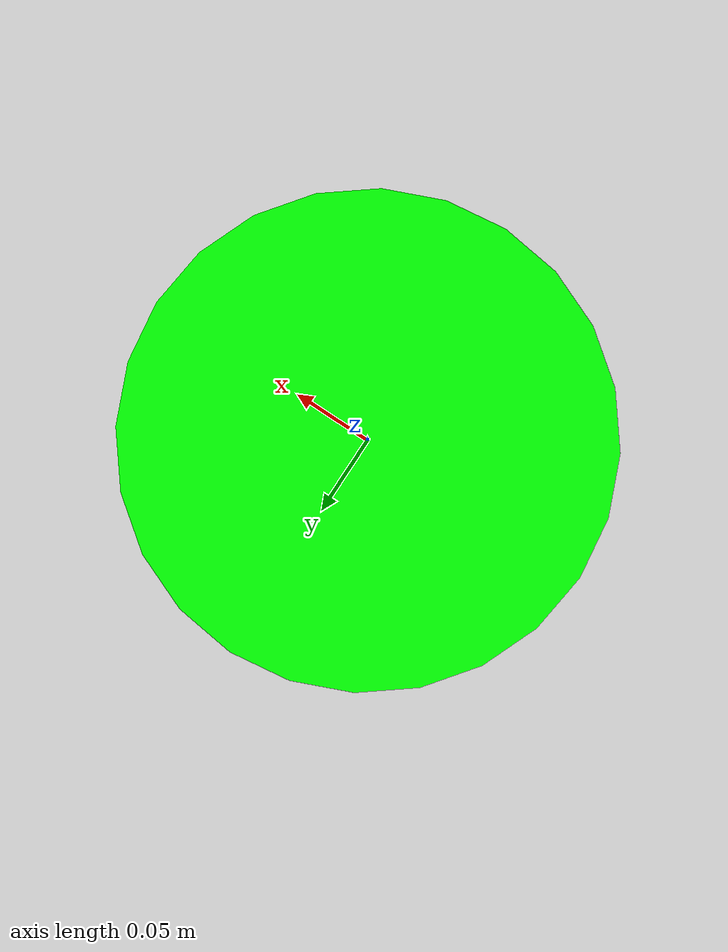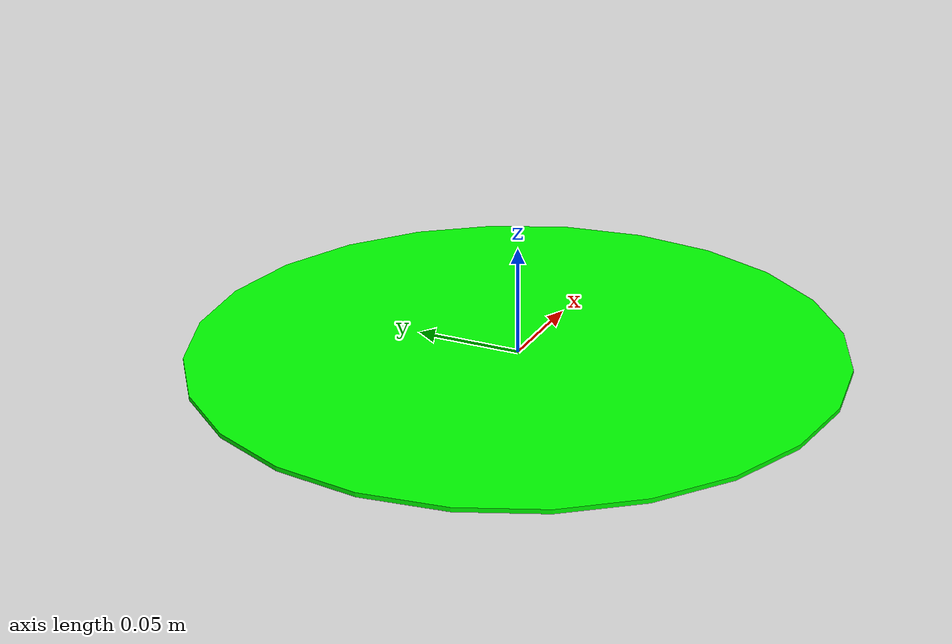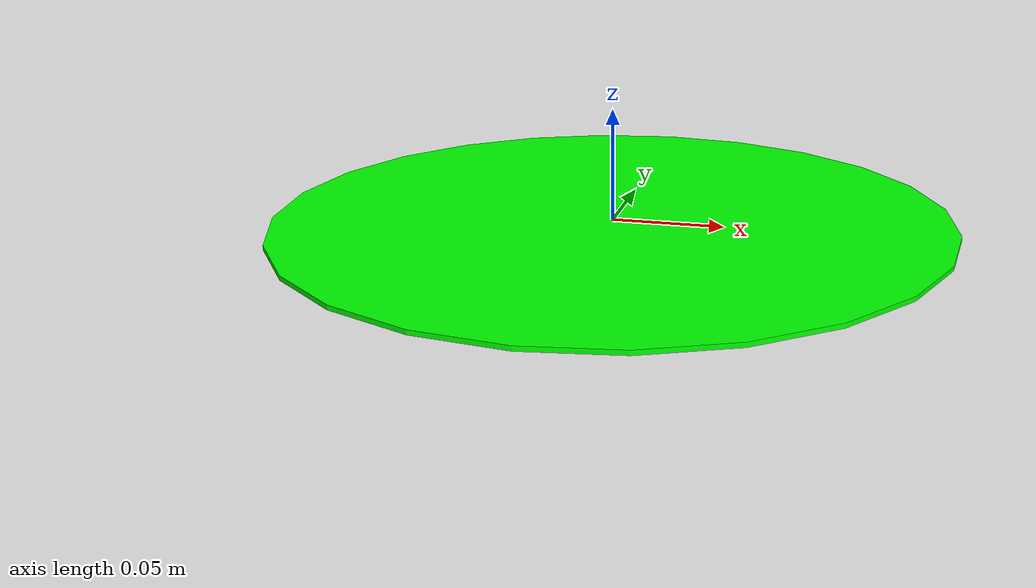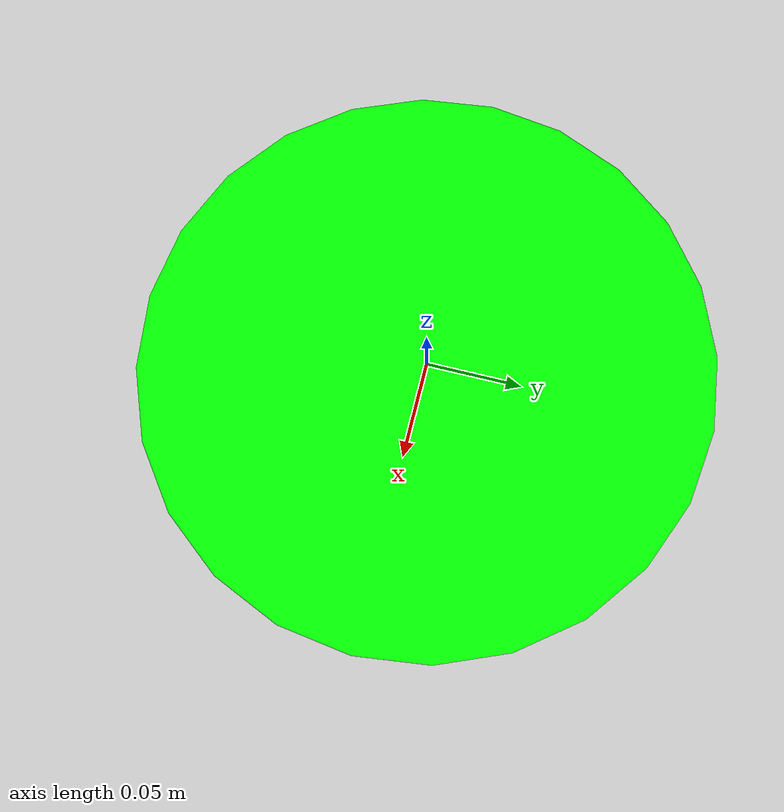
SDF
<?xml version="1.0" ?>
<sdf version="1.6">
    <model name="goal_marker">
        <static>true</static>

        <link name="goal_link">
            <pose>0 0 0.002 0 0 0</pose>

            <visual name="goal_circle_visual">
                <geometry>
                    <cylinder>
                        <radius>0.15</radius>
                        <length>0.002</length>
                    </cylinder>
                </geometry>

                <material>
                    <ambient>0.0 1.0 0.0 1.0</ambient>
                    <diffuse>0.0 1.0 0.0 1.0</diffuse>
                </material>
            </visual>
        </link>
    </model>
</sdf>
